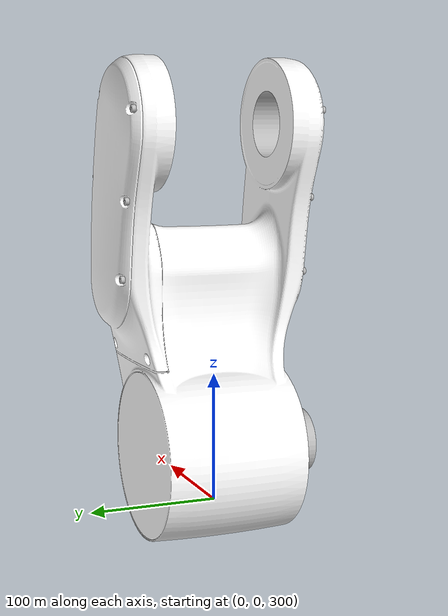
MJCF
<mujoco model="J2">
  <default>
    <default class="visual">
      <geom group="2" type="mesh" contype="0" conaffinity="0"/>
    </default>
    <default class="collision">
      <geom group="3" type="mesh"/>
    </default>
  </default>
  <asset>
    <material name="255,255,255" specular="0.5" shininess="0.5" rgba="1.000000 1.000000 1.000000 1.0"/>
    <material name="189,189,189" specular="0.5" shininess="0.5" rgba="0.741176 0.741176 0.741176 1.0"/>
    <mesh file="J2_0.obj"/>
    <mesh file="J2_1.obj"/>
  </asset>
  <worldbody>
    <body name="J2">
      <geom mesh="J2_0" material="189,189,189" class="visual"/>
      <geom mesh="J2_1" material="255,255,255" class="visual"/>
      <geom mesh="J2_0" class="collision"/>
      <geom mesh="J2_1" class="collision"/>
    </body>
  </worldbody>
</mujoco>
